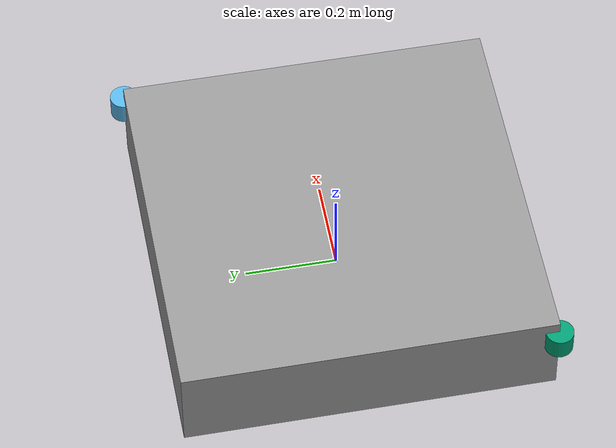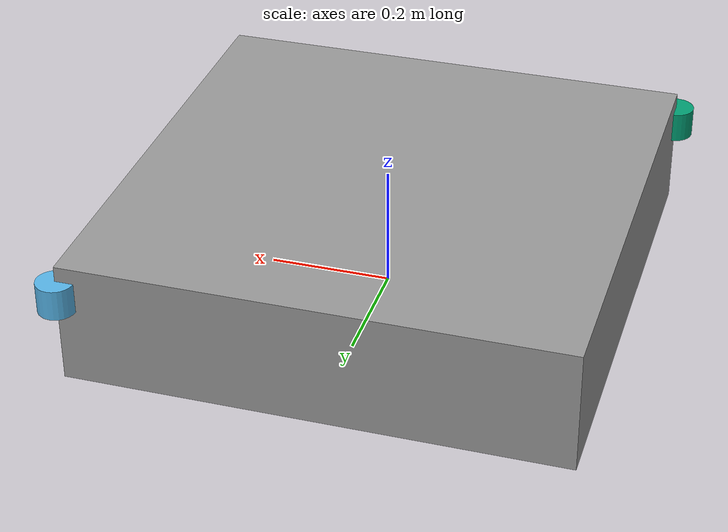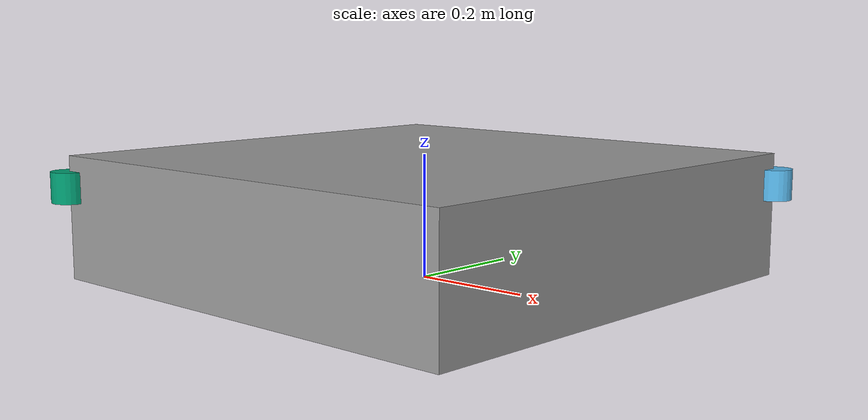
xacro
<?xml version="1.0"?>

<robot xmlns:xacro="http://www.ros.org/wiki/xacro" name="amr">

  <!-- TODO: confirm against real chassis once known -->
  <xacro:property name="chassis_x" value="0.8"/>
  <xacro:property name="chassis_y" value="0.8"/>
  <xacro:property name="chassis_z" value="0.2"/>

  <!-- TODO: confirm against real chassis once known -->
  <xacro:property name="laser_front_left_x" value="0.4"/>
  <xacro:property name="laser_front_left_y" value="0.4"/>
  <xacro:property name="laser_front_left_z" value="0.15"/>
  <xacro:property name="laser_front_left_yaw" value="0.0"/>

  <!-- TODO: confirm against real chassis once known -->
  <xacro:property name="laser_rear_right_x" value="-0.4"/>
  <xacro:property name="laser_rear_right_y" value="-0.4"/>
  <xacro:property name="laser_rear_right_z" value="0.15"/>
  <xacro:property name="laser_rear_right_yaw" value="3.14159"/>

  <link name="base_link">

    <visual>
      <origin xyz="0 0 ${chassis_z/2}" rpy="0 0 0"/>
      <geometry>
        <box size="${chassis_x} ${chassis_y} ${chassis_z}"/>
      </geometry>
      <material name="gray">
        <color rgba="0.6 0.6 0.6 1.0"/>
      </material>
    </visual>

    <collision>
      <origin xyz="0 0 ${chassis_z/2}" rpy="0 0 0"/>
      <geometry>
        <box size="${chassis_x} ${chassis_y} ${chassis_z}"/>
      </geometry>
    </collision>

    <inertial>
      <origin xyz="0 0 ${chassis_z/2}" rpy="0 0 0"/>
      <mass value="20.0"/>
      <inertia
        ixx="1.0"
        ixy="0.0"
        ixz="0.0"
        iyy="1.0"
        iyz="0.0"
        izz="1.0"/>
    </inertial>

  </link>

  <link name="laser_front_left">
    <visual>
      <geometry>
        <cylinder radius="0.03" length="0.05"/>
      </geometry>
    </visual>
  </link>

  <joint name="laser_front_left_joint" type="fixed">
    <parent link="base_link"/>
    <child link="laser_front_left"/>
    <origin
      xyz="${laser_front_left_x} ${laser_front_left_y} ${laser_front_left_z}"
      rpy="0 0 ${laser_front_left_yaw}"/>
  </joint>

  <link name="laser_rear_right">
    <visual>
      <geometry>
        <cylinder radius="0.03" length="0.05"/>
      </geometry>
    </visual>
  </link>

  <joint name="laser_rear_right_joint" type="fixed">
    <parent link="base_link"/>
    <child link="laser_rear_right"/>
    <origin
      xyz="${laser_rear_right_x} ${laser_rear_right_y} ${laser_rear_right_z}"
      rpy="0 0 ${laser_rear_right_yaw}"/>
  </joint>

</robot>
